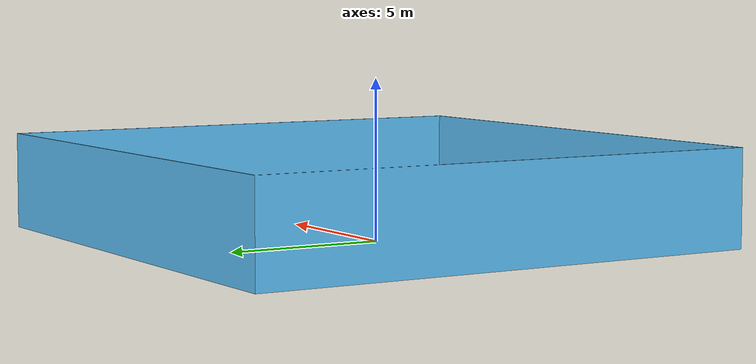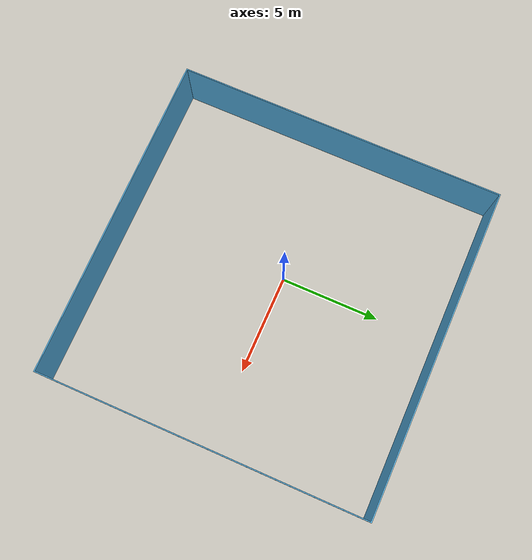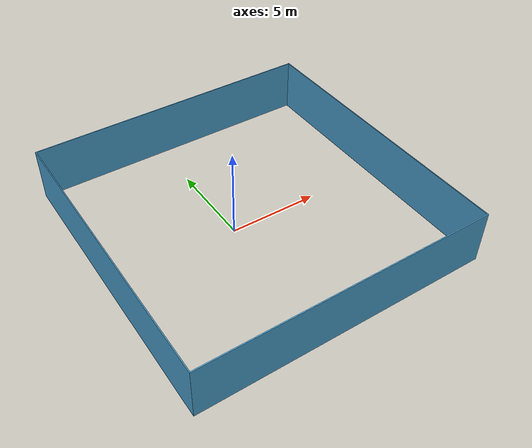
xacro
<?xml version="1.0"?>
<robot xmlns:xacro="http://ros.org/wiki/xacro" name="world" >

    <xacro:property name="stl_scale_x" value="35.0" />
    <xacro:property name="stl_scale_y" value="35.0" />
    <xacro:property name="stl_scale_z" value="35.0" />

    <link name="base_link"/>

    <joint name="world_joint" type="fixed">
        <origin xyz="0 0 0" rpy="0 0 0"/>
        <parent link="base_link"/>
        <child link="world_link"/>
    </joint>

    <link name="world_link">
        <visual>
            <geometry>
                <mesh filename="package://robile_ros_navigation/examples/gazebo_simulation/map/empty.stl"
                      scale="${stl_scale_x} ${stl_scale_y} ${stl_scale_z}"/>
            </geometry>
        </visual>
        <collision>
            <geometry>
                <mesh filename="package://robile_ros_navigation/examples/gazebo_simulation/map/empty.stl"
                      scale="${stl_scale_x} ${stl_scale_y} ${stl_scale_z}"/>
            </geometry>
        </collision>
        <inertial>
            <mass value="12000.0" />
            <inertia ixx="1000.0"
                     iyy="1000.0"
                     iyz="0.0" ixy="0.0" ixz="0.0"
                     izz="1000.0" />
        </inertial>
    </link>

</robot>
